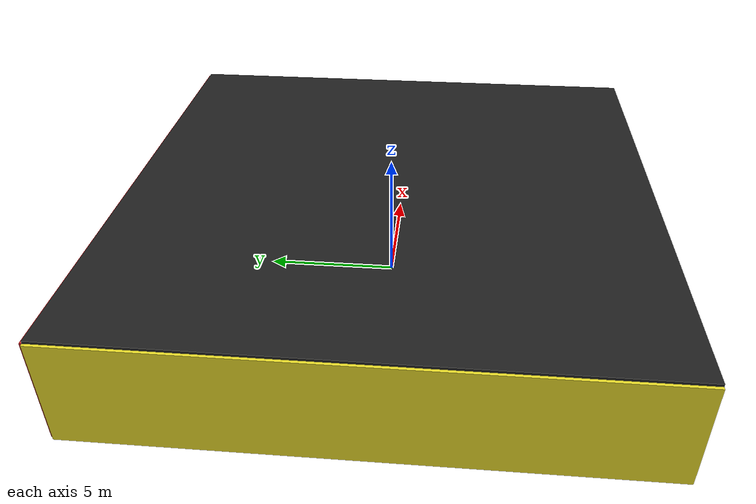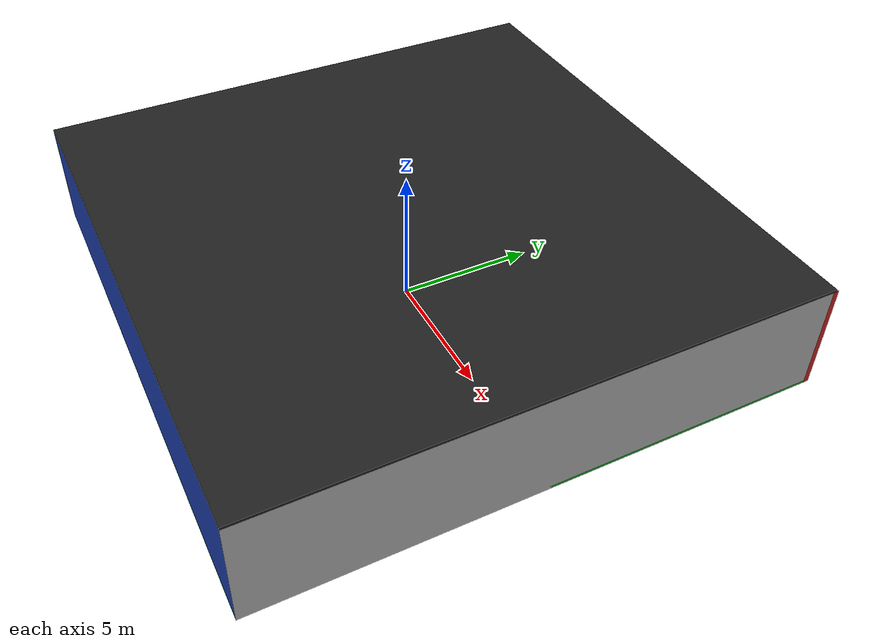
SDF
<sdf version="1.4">
 <world name="default">
  <physics type="ode">
   <max_step_size>0.001</max_step_size>
   <real_time_factor>1</real_time_factor>
   <real_time_update_rate>1000</real_time_update_rate>
   <gravity>0 0 -9.8</gravity>
  </physics>
  <scene><ambient>0.4 0.4 0.4 1</ambient><background>0.7 0.7 0.7 1</background><shadows>1</shadows></scene>
  <model name="Surrounding">
   <static>1</static>
   <link name="Ceiling">
    <collision name="Ceiling_Collision"><geometry><box><size>20 20 0.1</size></box></geometry></collision>
    <visual name="Ceiling_Visual">
     <geometry><box><size>20 20 0.1</size></box></geometry>
     <material>
      <script><uri>file://media/materials/scripts/gazebo.material</uri><name>Gazebo/FlatBlack</name></script>
     </material>
    </visual>
    <pose>0 0 4.05 0 0 0</pose>
   </link>
   <link name="Wall_South">
    <collision name="Wall_South_Collision">
     <geometry><box><size>20 0 4</size></box></geometry>
     <pose>0 0 2 0 -0 0</pose>
    </collision>
    <visual name="Wall_South_Visual">
     <pose>0 0 2 0 -0 0</pose>
     <geometry><box><size>20 0 4</size></box></geometry>
     <material>
      <script><uri>file://media/materials/scripts/gazebo.material</uri><name>Gazebo/Blue</name></script>
     </material>
    </visual>
    <velocity_decay><linear>0</linear><angular>0</angular></velocity_decay>
    <pose>0 -10 0 0 -0 0</pose>
   </link>
   <link name="Wall_East">
    <collision name="Wall_21_Collision">
     <geometry><box><size>20 0 4</size></box></geometry>
     <pose>0 0 2 0 -0 0</pose>
    </collision>
    <visual name="Wall_21_Visual">
     <pose>0 0 2 0 -0 0</pose>
     <geometry><box><size>20 0 4</size></box></geometry>
     <material>
      <script><uri>file://media/materials/scripts/gazebo.material</uri><name>Gazebo/LightOn</name></script>
     </material>
    </visual>
    <velocity_decay><linear>0</linear><angular>0</angular></velocity_decay>
    <pose>10 0 0 0 -0 1.5708</pose>
   </link>
   <link name="Wall_North">
    <collision name="Wall_22_Collision">
     <geometry><box><size>20 0.2 4</size></box></geometry>
     <pose>0 0 2 0 -0 0</pose>
    </collision>
    <visual name="Wall_22_Visual">
     <pose>0 0 2 0 -0 0</pose>
     <geometry><box><size>20 0.2 4</size></box></geometry>
     <material>
      <script><uri>file://media/materials/scripts/gazebo.material</uri><name>Gazebo/RedGlow</name></script>
     </material>
    </visual>
    <velocity_decay><linear>0</linear><angular>0</angular></velocity_decay>
    <pose>0 10 0 0 -0 0</pose>
   </link>
   <link name="Wall_West">
    <collision name="Wall_23_Collision">
     <geometry><box><size>20 0.2 4</size></box></geometry>
     <pose>0 0 2 0 -0 0</pose>
    </collision>
    <visual name="Wall_23_Visual">
     <pose>0 0 2 0 -0 0</pose>
     <geometry><box><size>20 0.2 4</size></box></geometry>
     <material>
      <script><uri>file://media/materials/scripts/gazebo.material</uri><name>Gazebo/Yellow</name></script>
     </material>
    </visual>
    <velocity_decay><linear>0</linear><angular>0</angular></velocity_decay>
    <pose>-10 0 0 0 0 -1.5708</pose>
   </link>
   <link name="Ground_link">
    <collision name="collision">
     <pose>0 0 .05 0 -0 0</pose>
     <geometry><box><size>20 20 0.1</size></box></geometry>
    </collision>
    <visual name="visual">
     <pose>0 0 .05 0 -0 0</pose>
     <geometry><box><size>20 20 0.1</size></box></geometry>
     <material>
      <script><uri>file://media/materials/scripts/gazebo.material</uri><name>Gazebo/Green</name></script>
     </material>
    </visual>
   </link>
   <static>1</static>
  </model>
  <spherical_coordinates>
   <surface_model>EARTH_WGS84</surface_model>
   <latitude_deg>0</latitude_deg>
   <longitude_deg>0</longitude_deg>
   <elevation>0</elevation>
   <heading_deg>0</heading_deg>
  </spherical_coordinates>
  <light name="lightball_0" type="diffuse">
   <diffuse>0.8 0.8 0.8 1</diffuse>
   <specular>0.2 0.2 0.2 1</specular>
   <attenuation>
    <range>100</range>
    <constant>0.7</constant>
    <linear>0.01</linear>
    <quadratic>0.001</quadratic>
   </attenuation>
   <direction>-0.5 0.1 -0.9</direction>
   <pose>2.21447334122 2.99524624937 3.48441900068 0 0 0</pose>
  </light>
  <light name="lightball_1" type="diffuse">
   <diffuse>0.8 0.8 0.8 1</diffuse>
   <specular>0.2 0.2 0.2 1</specular>
   <attenuation>
    <range>100</range>
    <constant>0.7</constant>
    <linear>0.01</linear>
    <quadratic>0.001</quadratic>
   </attenuation>
   <direction>-0.5 0.1 -0.9</direction>
   <pose>6.81309113896 -3.54937828276 2.44250628467 0 0 0</pose>
  </light>
  <light name="lightball_2" type="diffuse">
   <diffuse>0.8 0.8 0.8 1</diffuse>
   <specular>0.2 0.2 0.2 1</specular>
   <attenuation>
    <range>100</range>
    <constant>0.7</constant>
    <linear>0.01</linear>
    <quadratic>0.001</quadratic>
   </attenuation>
   <direction>-0.5 0.1 -0.9</direction>
   <pose>-8.89483842132 -3.84182349672 2.72548774861 0 0 0</pose>
  </light>
  <light name="lightball_3" type="diffuse">
   <diffuse>0.8 0.8 0.8 1</diffuse>
   <specular>0.2 0.2 0.2 1</specular>
   <attenuation>
    <range>100</range>
    <constant>0.7</constant>
    <linear>0.01</linear>
    <quadratic>0.001</quadratic>
   </attenuation>
   <direction>-0.5 0.1 -0.9</direction>
   <pose>6.53184367918 -9.39533924342 2.73427930245 0 0 0</pose>
  </light>
  <light name="lightball_4" type="diffuse">
   <diffuse>0.8 0.8 0.8 1</diffuse>
   <specular>0.2 0.2 0.2 1</specular>
   <attenuation>
    <range>100</range>
    <constant>0.7</constant>
    <linear>0.01</linear>
    <quadratic>0.001</quadratic>
   </attenuation>
   <direction>-0.5 0.1 -0.9</direction>
   <pose>3.38864724091 6.24837479156 3.55588433265 0 0 0</pose>
  </light>
  <light name="lightball_5" type="diffuse">
   <diffuse>0.8 0.8 0.8 1</diffuse>
   <specular>0.2 0.2 0.2 1</specular>
   <attenuation>
    <range>100</range>
    <constant>0.7</constant>
    <linear>0.01</linear>
    <quadratic>0.001</quadratic>
   </attenuation>
   <direction>-0.5 0.1 -0.9</direction>
   <pose>-2.75324289463 4.97368411274 1.83131845701 0 0 0</pose>
  </light>
  <light name="lightball_6" type="diffuse">
   <diffuse>0.8 0.8 0.8 1</diffuse>
   <specular>0.2 0.2 0.2 1</specular>
   <attenuation>
    <range>100</range>
    <constant>0.7</constant>
    <linear>0.01</linear>
    <quadratic>0.001</quadratic>
   </attenuation>
   <direction>-0.5 0.1 -0.9</direction>
   <pose>6.29832937688 1.53753117828 0.633474052547 0 0 0</pose>
  </light>
  <light name="lightball_7" type="diffuse">
   <diffuse>0.8 0.8 0.8 1</diffuse>
   <specular>0.2 0.2 0.2 1</specular>
   <attenuation>
    <range>100</range>
    <constant>0.7</constant>
    <linear>0.01</linear>
    <quadratic>0.001</quadratic>
   </attenuation>
   <direction>-0.5 0.1 -0.9</direction>
   <pose>-2.55697802451 -4.89767851374 1.41334929756 0 0 0</pose>
  </light>
  <light name="lightball_8" type="diffuse">
   <diffuse>0.8 0.8 0.8 1</diffuse>
   <specular>0.2 0.2 0.2 1</specular>
   <attenuation>
    <range>100</range>
    <constant>0.7</constant>
    <linear>0.01</linear>
    <quadratic>0.001</quadratic>
   </attenuation>
   <direction>-0.5 0.1 -0.9</direction>
   <pose>1.39039487997 -2.51313744484 0.760837138084 0 0 0</pose>
  </light>
  <light name="lightball_9" type="diffuse">
   <diffuse>0.8 0.8 0.8 1</diffuse>
   <specular>0.2 0.2 0.2 1</specular>
   <attenuation>
    <range>100</range>
    <constant>0.7</constant>
    <linear>0.01</linear>
    <quadratic>0.001</quadratic>
   </attenuation>
   <direction>-0.5 0.1 -0.9</direction>
   <pose>-6.68938450646 -7.46485938588 1.68924892418 0 0 0</pose>
  </light>
  <light name="lightball_10" type="diffuse">
   <diffuse>0.8 0.8 0.8 1</diffuse>
   <specular>0.2 0.2 0.2 1</specular>
   <attenuation>
    <range>100</range>
    <constant>0.7</constant>
    <linear>0.01</linear>
    <quadratic>0.001</quadratic>
   </attenuation>
   <direction>-0.5 0.1 -0.9</direction>
   <pose>2.68701624506 -2.68338867804 0.947210165115 0 0 0</pose>
  </light>
  <light name="lightball_11" type="diffuse">
   <diffuse>0.8 0.8 0.8 1</diffuse>
   <specular>0.2 0.2 0.2 1</specular>
   <attenuation>
    <range>100</range>
    <constant>0.7</constant>
    <linear>0.01</linear>
    <quadratic>0.001</quadratic>
   </attenuation>
   <direction>-0.5 0.1 -0.9</direction>
   <pose>1.51165894098 9.16989887092 2.1807969764 0 0 0</pose>
  </light>
  <include>
   <uri>model://construction_cone</uri>
   <pose>-6.67042475338 4.42002956488 0 0 0 2.54095262229</pose>
  </include>
  <include>
   <uri>model://robocup_3Dsim_goal</uri>
   <pose>-0.335028953479 -6.57801230928 0 0 0 2.53950853056</pose>
  </include>
  <include><uri>model://cabinet</uri><pose>1.60769457697 2.04490599478 0 0 0 2.55214783888</pose></include>
  <include><uri>model://cabinet</uri><pose>4.02799118033 -4.31934392292 0 0 0 0.0880390547022</pose></include>
  <include><uri>model://table</uri><pose>5.19042346153 2.42442101628 0 0 0 3.10869497905</pose></include>
  <include>
   <uri>model://robocup_3Dsim_goal</uri>
   <pose>8.20086517766 -4.75189074904 0 0 0 0.512159279759</pose>
  </include>
  <include><uri>model://cabinet</uri><pose>6.83219182809 2.4645266811 0 0 0 2.25298948085</pose></include>
 </world>
</sdf>

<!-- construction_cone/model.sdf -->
<sdf version="1.5">
  <model name="Construction Cone">
    <link name="link">
      <collision name="collision">
        <geometry>
          <mesh>
            <scale>10 10 10</scale>
            <uri>file://isr-testbed/construction_cone/meshes/construction_cone.dae</uri>
          </mesh>
        </geometry>
      </collision>
      <visual name="visual">
        <geometry>
          <mesh>
            <scale>10 10 10</scale>
            <uri>file://isr-testbed/construction_cone/meshes/construction_cone.dae</uri>
          </mesh>
        </geometry>
      </visual>
    </link>
  </model>
</sdf>

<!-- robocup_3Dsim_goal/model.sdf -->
<sdf version="1.5">
  <model name="robocup_3d_goal">
    <static>true</static>
    <link name="left_post">
      <pose>0 1.05 0.45 0 0 0</pose>
      <collision name="collision">
        <geometry>
          <cylinder>
            <radius>0.05</radius>
            <length>0.9</length>
          </cylinder>
        </geometry>
      </collision>
      <visual name="visual">
        <geometry>
          <cylinder>
            <radius>0.05</radius>
            <length>0.9</length>
          </cylinder>
        </geometry>
        <material>
          <script>
            <uri>file://media/materials/scripts/gazebo.material</uri>
            <name>Gazebo/ZincYellow</name>
          </script>
        </material>
      </visual>
    </link>
    <link name="left_support_horiz_lower">
      <pose>0.30 1.05 0.01 0 0 0</pose>
      <collision name="collision">
        <geometry>
          <box>
            <size>0.50 0.02 0.02</size>
          </box>
        </geometry>
      </collision>
      <visual name="visual">
        <geometry>
          <box>
            <size>0.50 0.02 0.02</size>
          </box>
        </geometry>
        <material>
          <script>
            <uri>file://media/materials/scripts/gazebo.material</uri>
            <name>Gazebo/White</name>
          </script>
        </material>
      </visual>
    </link>
    <link name="left_support_horiz_upper">
      <pose>0.30 1.05 0.79 0 0 0</pose>
      <collision name="collision">
        <geometry>
          <box>
            <size>0.50 0.02 0.02</size>
          </box>
        </geometry>
      </collision>
      <visual name="visual">
        <geometry>
          <box>
            <size>0.50 0.02 0.02</size>
          </box>
        </geometry>
        <material>
          <script>
            <uri>file://media/materials/scripts/gazebo.material</uri>
            <name>Gazebo/White</name>
          </script>
        </material>
      </visual>
    </link>
    <link name="left_support_vertical">
      <pose>0.56 1.05 0.4 0 1.5708 0</pose>
      <collision name="collision">
        <geometry>
          <box>
            <size>0.80 0.02 0.02</size>
          </box>
        </geometry>
      </collision>
      <visual name="visual">
        <geometry>
          <box>
            <size>0.80 0.02 0.02</size>
          </box>
        </geometry>
        <material>
          <script>
            <uri>file://media/materials/scripts/gazebo.material</uri>
            <name>Gazebo/White</name>
          </script>
        </material>
      </visual>
    </link>
    <link name="right_support_horiz_lower">
      <pose>0.30 -1.05 0.01 0 0 0</pose>
      <collision name="collision">
        <geometry>
          <box>
            <size>0.50 0.02 0.02</size>
          </box>
        </geometry>
      </collision>
      <visual name="visual">
        <geometry>
          <box>
            <size>0.50 0.02 0.02</size>
          </box>
        </geometry>
        <material>
          <script>
            <uri>file://media/materials/scripts/gazebo.material</uri>
            <name>Gazebo/White</name>
          </script>
        </material>
      </visual>
    </link>
    <link name="right_support_horiz_upper">
      <pose>0.30 -1.05 0.79 0 0 0</pose>
      <collision name="collision">
        <geometry>
          <box>
            <size>0.50 0.02 0.02</size>
          </box>
        </geometry>
      </collision>
      <visual name="visual">
        <geometry>
          <box>
            <size>0.50 0.02 0.02</size>
          </box>
        </geometry>
        <material>
          <script>
            <uri>file://media/materials/scripts/gazebo.material</uri>
            <name>Gazebo/White</name>
          </script>
        </material>
      </visual>
    </link>
    <link name="right_support_vertical">
      <pose>0.56 -1.05 0.4 0 1.5708 0</pose>
      <collision name="collision">
        <geometry>
          <box>
            <size>0.80 0.02 0.02</size>
          </box>
        </geometry>
      </collision>
      <visual name="visual">
        <geometry>
          <box>
            <size>0.80 0.02 0.02</size>
          </box>
        </geometry>
        <material>
          <script>
            <uri>file://media/materials/scripts/gazebo.material</uri>
            <name>Gazebo/White</name>
          </script>
        </material>
      </visual>
    </link>
    <link name="center_support_horiz_lower">
      <pose>0.56 0 0.01 0 1.5708 0</pose>
      <collision name="collision">
        <geometry>
          <box>
            <size>0.02 2.08 0.02</size>
          </box>
        </geometry>
      </collision>
      <visual name="visual">
        <geometry>
          <box>
            <size>0.02 2.08 0.02</size>
          </box>
        </geometry>
        <material>
          <script>
            <uri>file://media/materials/scripts/gazebo.material</uri>
            <name>Gazebo/White</name>
          </script>
        </material>
      </visual>
    </link>
    <link name="center_support_horiz_upper">
      <pose>0.56 0 0.79 0 1.5708 0</pose>
      <collision name="collision">
        <geometry>
          <box>
            <size>0.02 2.08 0.02</size>
          </box>
        </geometry>
      </collision>
      <visual name="visual">
        <geometry>
          <box>
            <size>0.02 2.08 0.02</size>
          </box>
        </geometry>
        <material>
          <script>
            <uri>file://media/materials/scripts/gazebo.material</uri>
            <name>Gazebo/White</name>
          </script>
        </material>
      </visual>
    </link>
    <link name="right_post">
      <pose>0 -1.05 0.45 0 0 0</pose>
      <collision name="collision">
        <geometry>
          <cylinder>
            <radius>0.05</radius>
            <length>0.9</length>
          </cylinder>
        </geometry>
      </collision>
      <visual name="visual">
        <geometry>
          <cylinder>
            <radius>0.05</radius>
            <length>0.9</length>
          </cylinder>
        </geometry>
        <material>
          <script>
            <uri>file://media/materials/scripts/gazebo.material</uri>
            <name>Gazebo/ZincYellow</name>
          </script>
        </material>
      </visual>
    </link>
    <link name="crossbar">
      <pose>0 0 0.85 1.57 1.57 0</pose>
      <collision name="collision">
        <geometry>
          <cylinder>
            <radius>0.05</radius>
            <length>2.0</length>
          </cylinder>
        </geometry>
      </collision>
      <visual name="visual">
        <geometry>
          <cylinder>
            <radius>0.05</radius>
            <length>2.0</length>
          </cylinder>
        </geometry>
        <material>
          <script>
            <uri>file://media/materials/scripts/gazebo.material</uri>
            <name>Gazebo/ZincYellow</name>
          </script>
        </material>
      </visual>
    </link>
    <link name="center_net">
      <pose>0.56 0 0.40 0 0 0</pose>
      <collision name="collision">
        <geometry>
          <box>
            <size>0.01 2.1 0.80</size>
          </box>
        </geometry>
      </collision>
      <visual name="visual">
        <geometry>
          <box>
            <size>0.01 2.1 0.80</size>
          </box>
        </geometry>
        <material>
          <script>
            <uri>model://../model_source/models/robocup09_spl_field/materials/scripts/</uri>
            <uri>model://../model_source/models/robocup09_spl_field/materials/textures/</uri>
            <name>RoboCup/Net</name>
          </script>
        </material>
      </visual>
    </link>
    <link name="left_net">
      <pose>0.30 1.05 0.40 0 0 0</pose>
      <collision name="collision">
        <geometry>
          <box>
            <size>0.50 0.01 0.76</size>
          </box>
        </geometry>
      </collision>
      <visual name="visual">
        <geometry>
          <box>
            <size>0.50 0.01 0.76</size>
          </box>
        </geometry>
        <material>
          <script>
            <uri>model://../model_source/models/robocup09_spl_field/materials/scripts/</uri>
            <uri>model://../model_source/models/robocup09_spl_field/materials/textures/</uri>
            <name>RoboCup/Net</name>
          </script>
        </material>
      </visual>
    </link>
    <link name="right_net">
      <pose>0.30 -1.05 0.40 0 0 0</pose>
      <collision name="collision">
        <geometry>
          <box>
            <size>0.50 0.01 0.76</size>
          </box>
        </geometry>
      </collision>
      <visual name="visual">
        <geometry>
          <box>
            <size>0.50 0.01 0.76</size>
          </box>
        </geometry>
        <material>
          <script>
            <uri>model://../model_source/models/robocup09_spl_field/materials/scripts/</uri>
            <uri>model://../model_source/models/robocup09_spl_field/materials/textures/</uri>
            <name>RoboCup/Net</name>
          </script>
        </material>
      </visual>
    </link>
  </model>
</sdf>

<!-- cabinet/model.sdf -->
<sdf version="1.5">
  <model name="cabinet">
    <static>true</static>
    <link name="cabinet_bottom_plate">
      <inertial>
        <pose>0 0 -1 0 0 0</pose>
        <inertia>
          <ixx>2.050000</ixx>
          <ixy>0</ixy>
          <ixz>0</ixz>
          <iyy>2.050000</iyy>
          <iyz>0</iyz>
          <izz>2.050000</izz>
        </inertia>
        <mass>25.000000</mass>
      </inertial>
      <collision name="cabinet_bottom_plate_geom">
        <pose>0 0 0.010000 0 0 0</pose>
        <geometry>
          <box>
            <size>0.450000 0.450000 0.020000</size>
          </box>
        </geometry>
      </collision>
      <visual name="cabinet_bottom_plate_geom_visual">
        <pose>0 0 0.010000 0 0 0</pose>
        <geometry>
          <box>
            <size>0.450000 0.450000 0.020000</size>
          </box>
        </geometry>
        <material>
          <script>
            <uri>model://media/materials/scripts/gazebo.material</uri>
            <name>Gazebo/Wood</name>
          </script>
        </material>
      </visual>
      <collision name="cabinet_bottom_plate_geom_cabinet_back_plate">
        <pose>0.235000 0 0.510000 0 0 0</pose>
        <geometry>
          <box>
            <size>0.020000 0.450000 1.020000</size>
          </box>
        </geometry>
      </collision>
      <visual name="cabinet_bottom_plate_geom_cabinet_back_plate_visual">
        <pose>0.235000 0 0.510000 0 0 0</pose>
        <geometry>
          <box>
            <size>0.020000 0.450000 1.020000</size>
          </box>
        </geometry>
        <material>
          <script>
            <uri>model://media/materials/scripts/gazebo.material</uri>
            <name>Gazebo/Wood</name>
          </script>
        </material>
      </visual>
      <collision name="cabinet_bottom_plate_geom_cabinet_left_plate">
        <pose>0 0.235000 0.510000 0 0 0</pose>
        <geometry>
          <box>
            <size>0.450000 0.020000 1.020000</size>
          </box>
        </geometry>
      </collision>
      <visual name="cabinet_bottom_plate_geom_cabinet_left_plate_visual">
        <pose>0 0.235000 0.510000 0 0 0</pose>
        <geometry>
          <box>
            <size>0.450000 0.020000 1.020000</size>
          </box>
        </geometry>
        <material>
          <script>
            <uri>model://media/materials/scripts/gazebo.material</uri>
            <name>Gazebo/Wood</name>
          </script>
        </material>
      </visual>
      <collision name="cabinet_bottom_plate_geom_cabinet_middle_plate">
        <pose>0 0 0.510000 0 0 0</pose>
        <geometry>
          <box>
            <size>0.450000 0.450000 0.020000</size>
          </box>
        </geometry>
      </collision>
      <visual name="cabinet_bottom_plate_geom_cabinet_middle_plate_visual">
        <pose>0 0 0.510000 0 0 0</pose>
        <geometry>
          <box>
            <size>0.450000 0.450000 0.020000</size>
          </box>
        </geometry>
        <material>
          <script>
            <uri>model://media/materials/scripts/gazebo.material</uri>
            <name>Gazebo/Wood</name>
          </script>
        </material>
      </visual>
      <collision name="cabinet_bottom_plate_geom_cabinet_right_plate">
        <pose>0 -0.235000 0.510000 0 0 0</pose>
        <geometry>
          <box>
            <size>0.450000 0.020000 1.020000</size>
          </box>
        </geometry>
      </collision>
      <visual name="cabinet_bottom_plate_geom_cabinet_right_plate_visual">
        <pose>0 -0.235000 0.510000 0 0 0</pose>
        <geometry>
          <box>
            <size>0.450000 0.020000 1.020000</size>
          </box>
        </geometry>
        <material>
          <script>
            <uri>model://media/materials/scripts/gazebo.material</uri>
            <name>Gazebo/Wood</name>
          </script>
        </material>
      </visual>
      <collision name="cabinet_bottom_plate_geom_cabinet_top_plate">
        <pose>0 0 1.010000 0 0 0</pose>
        <geometry>
          <box>
            <size>0.450000 0.450000 0.020000</size>
          </box>
        </geometry>
      </collision>
      <visual name="cabinet_bottom_plate_geom_cabinet_top_plate_visual">
        <pose>0 0 1.010000 0 0 0</pose>
        <geometry>
          <box>
            <size>0.450000 0.450000 0.020000</size>
          </box>
        </geometry>
        <material>
          <script>
            <uri>model://media/materials/scripts/gazebo.material</uri>
            <name>Gazebo/Wood</name>
          </script>
        </material>
      </visual>
    </link>
  </model>
</sdf>

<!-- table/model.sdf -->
<sdf version="1.5">
  <model name="table">
    <static>true</static>
    <link name="link">
      <collision name="surface">
        <pose>0 0 1.0 0 0 0</pose>
        <geometry>
          <box>
            <size>1.5 0.8 0.03</size>
          </box>
        </geometry>
        <surface>
          <friction>
            <ode>
              <mu>0.6</mu>
              <mu2>0.6</mu2>
            </ode>
          </friction>
        </surface>
      </collision>
      <visual name="visual1">
        <pose>0 0 1.0 0 0 0</pose>
        <geometry>
          <box>
            <size>1.5 0.8 0.03</size>
          </box>
        </geometry>
        <material>
          <script>
            <uri>model://media/materials/scripts/gazebo.material</uri>
            <name>Gazebo/Wood</name>
          </script>
        </material>
      </visual>
      <collision name="front_left_leg">
        <pose>0.68 0.38 0.5 0 0 0</pose>
        <geometry>
          <cylinder>
            <radius>0.02</radius>
            <length>1.0</length>
          </cylinder>
        </geometry>
      </collision>
      <visual name="front_left_leg">
        <pose>0.68 0.38 0.5 0 0 0</pose>
        <geometry>
          <cylinder>
            <radius>0.02</radius>
            <length>1.0</length>
          </cylinder>
        </geometry>
        <material>
          <script>
            <uri>model://media/materials/scripts/gazebo.material</uri>
            <name>Gazebo/Grey</name>
          </script>
        </material>
      </visual>
      <collision name="front_right_leg">
        <pose>0.68 -0.38 0.5 0 0 0</pose>
        <geometry>
          <cylinder>
            <radius>0.02</radius>
            <length>1.0</length>
          </cylinder>
        </geometry>
      </collision>
      <visual name="front_right_leg">
        <pose>0.68 -0.38 0.5 0 0 0</pose>
        <geometry>
          <cylinder>
            <radius>0.02</radius>
            <length>1.0</length>
          </cylinder>
        </geometry>
        <material>
          <script>
            <uri>model://media/materials/scripts/gazebo.material</uri>
            <name>Gazebo/Grey</name>
          </script>
        </material>
      </visual>
      <collision name="back_right_leg">
        <pose>-0.68 -0.38 0.5 0 0 0</pose>
        <geometry>
          <cylinder>
            <radius>0.02</radius>
            <length>1.0</length>
          </cylinder>
        </geometry>
      </collision>
      <visual name="back_right_leg">
        <pose>-0.68 -0.38 0.5 0 0 0</pose>
        <geometry>
          <cylinder>
            <radius>0.02</radius>
            <length>1.0</length>
          </cylinder>
        </geometry>
        <material>
          <script>
            <uri>model://media/materials/scripts/gazebo.material</uri>
            <name>Gazebo/Grey</name>
          </script>
        </material>
      </visual>
      <collision name="back_left_leg">
        <pose>-0.68 0.38 0.5 0 0 0</pose>
        <geometry>
          <cylinder>
            <radius>0.02</radius>
            <length>1.0</length>
          </cylinder>
        </geometry>
      </collision>
      <visual name="back_left_leg">
        <pose>-0.68 0.38 0.5 0 0 0</pose>
        <geometry>
          <cylinder>
            <radius>0.02</radius>
            <length>1.0</length>
          </cylinder>
        </geometry>
        <material>
          <script>
            <uri>model://media/materials/scripts/gazebo.material</uri>
            <name>Gazebo/Grey</name>
          </script>
        </material>
      </visual>
    </link>
  </model>
</sdf>
